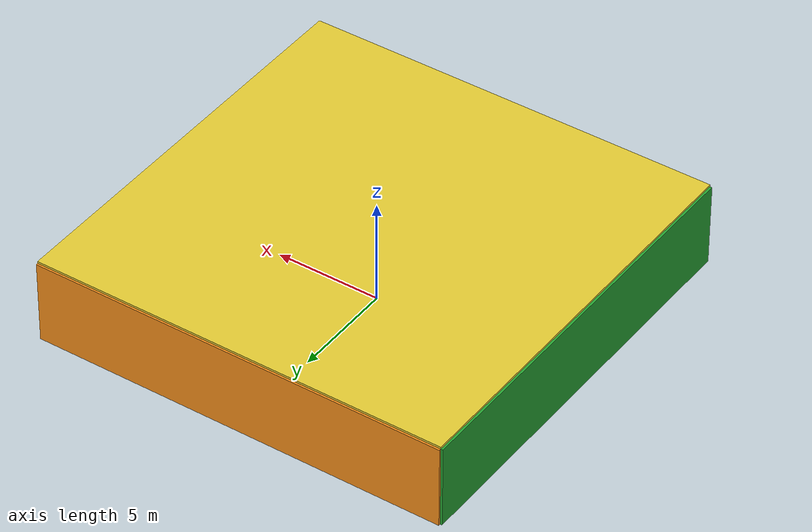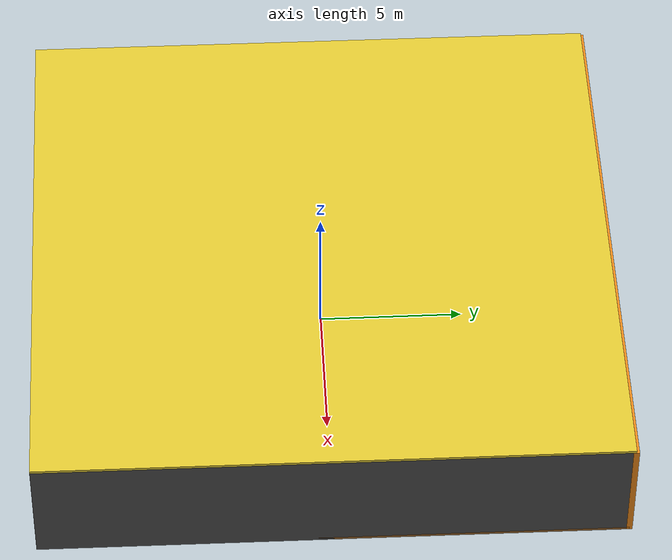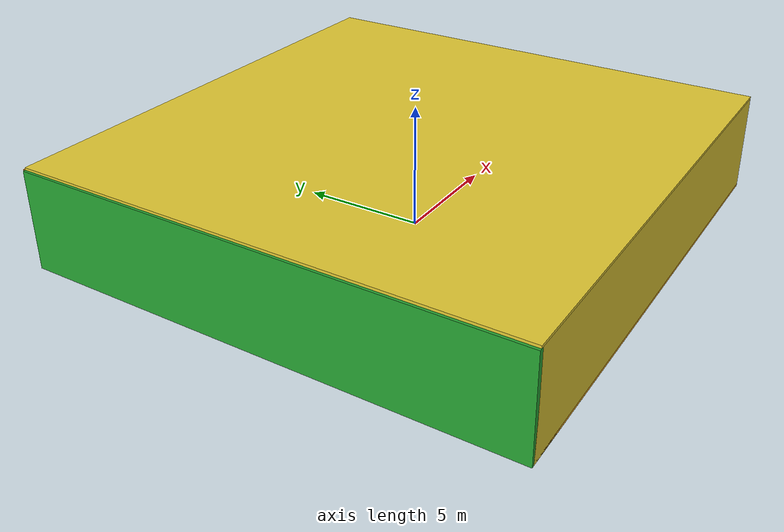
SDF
<sdf version="1.4">
 <world name="default">
  <physics type="ode">
   <max_step_size>0.001</max_step_size>
   <real_time_factor>1</real_time_factor>
   <real_time_update_rate>1000</real_time_update_rate>
   <gravity>0 0 -9.8</gravity>
  </physics>
  <scene><ambient>0.4 0.4 0.4 1</ambient><background>0.7 0.7 0.7 1</background><shadows>1</shadows></scene>
  <model name="Surrounding">
   <static>1</static>
   <link name="Ceiling">
    <collision name="Ceiling_Collision"><geometry><box><size>20 20 0.1</size></box></geometry></collision>
    <visual name="Ceiling_Visual">
     <geometry><box><size>20 20 0.1</size></box></geometry>
     <material>
      <script><uri>file://media/materials/scripts/gazebo.material</uri><name>Gazebo/ZincYellow</name></script>
     </material>
    </visual>
    <pose>0 0 4.05 0 0 0</pose>
   </link>
   <link name="Wall_South">
    <collision name="Wall_South_Collision">
     <geometry><box><size>20 0 4</size></box></geometry>
     <pose>0 0 2 0 -0 0</pose>
    </collision>
    <visual name="Wall_South_Visual">
     <pose>0 0 2 0 -0 0</pose>
     <geometry><box><size>20 0 4</size></box></geometry>
     <material>
      <script><uri>file://media/materials/scripts/gazebo.material</uri><name>Gazebo/ZincYellow</name></script>
     </material>
    </visual>
    <velocity_decay><linear>0</linear><angular>0</angular></velocity_decay>
    <pose>0 -10 0 0 -0 0</pose>
   </link>
   <link name="Wall_East">
    <collision name="Wall_21_Collision">
     <geometry><box><size>20 0 4</size></box></geometry>
     <pose>0 0 2 0 -0 0</pose>
    </collision>
    <visual name="Wall_21_Visual">
     <pose>0 0 2 0 -0 0</pose>
     <geometry><box><size>20 0 4</size></box></geometry>
     <material>
      <script><uri>file://media/materials/scripts/gazebo.material</uri><name>Gazebo/DarkGrey</name></script>
     </material>
    </visual>
    <velocity_decay><linear>0</linear><angular>0</angular></velocity_decay>
    <pose>10 0 0 0 -0 1.5708</pose>
   </link>
   <link name="Wall_North">
    <collision name="Wall_22_Collision">
     <geometry><box><size>20 0.2 4</size></box></geometry>
     <pose>0 0 2 0 -0 0</pose>
    </collision>
    <visual name="Wall_22_Visual">
     <pose>0 0 2 0 -0 0</pose>
     <geometry><box><size>20 0.2 4</size></box></geometry>
     <material>
      <script><uri>file://media/materials/scripts/gazebo.material</uri><name>Gazebo/Orange</name></script>
     </material>
    </visual>
    <velocity_decay><linear>0</linear><angular>0</angular></velocity_decay>
    <pose>0 10 0 0 -0 0</pose>
   </link>
   <link name="Wall_West">
    <collision name="Wall_23_Collision">
     <geometry><box><size>20 0.2 4</size></box></geometry>
     <pose>0 0 2 0 -0 0</pose>
    </collision>
    <visual name="Wall_23_Visual">
     <pose>0 0 2 0 -0 0</pose>
     <geometry><box><size>20 0.2 4</size></box></geometry>
     <material>
      <script><uri>file://media/materials/scripts/gazebo.material</uri><name>Gazebo/GreenGlow</name></script>
     </material>
    </visual>
    <velocity_decay><linear>0</linear><angular>0</angular></velocity_decay>
    <pose>-10 0 0 0 0 -1.5708</pose>
   </link>
   <link name="Ground_link">
    <collision name="collision">
     <pose>0 0 .05 0 -0 0</pose>
     <geometry><box><size>20 20 0.1</size></box></geometry>
    </collision>
    <visual name="visual">
     <pose>0 0 .05 0 -0 0</pose>
     <geometry><box><size>20 20 0.1</size></box></geometry>
     <material>
      <script>
       <uri>file://media/materials/scripts/gazebo.material</uri>
       <name>Gazebo/OrangeTransparent</name>
      </script>
     </material>
    </visual>
   </link>
   <static>1</static>
  </model>
  <spherical_coordinates>
   <surface_model>EARTH_WGS84</surface_model>
   <latitude_deg>0</latitude_deg>
   <longitude_deg>0</longitude_deg>
   <elevation>0</elevation>
   <heading_deg>0</heading_deg>
  </spherical_coordinates>
  <light name="lightball_0" type="diffuse">
   <diffuse>0.8 0.8 0.8 1</diffuse>
   <specular>0.2 0.2 0.2 1</specular>
   <attenuation>
    <range>100</range>
    <constant>0.7</constant>
    <linear>0.01</linear>
    <quadratic>0.001</quadratic>
   </attenuation>
   <direction>-0.5 0.1 -0.9</direction>
   <pose>5.24410748714 0.292180989482 2.56156318869 0 0 0</pose>
  </light>
  <light name="lightball_1" type="diffuse">
   <diffuse>0.8 0.8 0.8 1</diffuse>
   <specular>0.2 0.2 0.2 1</specular>
   <attenuation>
    <range>100</range>
    <constant>0.7</constant>
    <linear>0.01</linear>
    <quadratic>0.001</quadratic>
   </attenuation>
   <direction>-0.5 0.1 -0.9</direction>
   <pose>4.21238145068 8.8659340854 0.73266576788 0 0 0</pose>
  </light>
  <light name="lightball_2" type="diffuse">
   <diffuse>0.8 0.8 0.8 1</diffuse>
   <specular>0.2 0.2 0.2 1</specular>
   <attenuation>
    <range>100</range>
    <constant>0.7</constant>
    <linear>0.01</linear>
    <quadratic>0.001</quadratic>
   </attenuation>
   <direction>-0.5 0.1 -0.9</direction>
   <pose>-4.70834392055 1.761533475 1.19555045969 0 0 0</pose>
  </light>
  <light name="lightball_3" type="diffuse">
   <diffuse>0.8 0.8 0.8 1</diffuse>
   <specular>0.2 0.2 0.2 1</specular>
   <attenuation>
    <range>100</range>
    <constant>0.7</constant>
    <linear>0.01</linear>
    <quadratic>0.001</quadratic>
   </attenuation>
   <direction>-0.5 0.1 -0.9</direction>
   <pose>6.90084861671 -7.10885940108 0.973427821095 0 0 0</pose>
  </light>
  <light name="lightball_4" type="diffuse">
   <diffuse>0.8 0.8 0.8 1</diffuse>
   <specular>0.2 0.2 0.2 1</specular>
   <attenuation>
    <range>100</range>
    <constant>0.7</constant>
    <linear>0.01</linear>
    <quadratic>0.001</quadratic>
   </attenuation>
   <direction>-0.5 0.1 -0.9</direction>
   <pose>-2.52537970134 4.27331349567 3.44496572103 0 0 0</pose>
  </light>
  <include><uri>model://cabinet</uri><pose>-3.89636713113 -7.0051764288 0 0 0 1.3659940203</pose></include>
  <include>
   <uri>model://textured_shapes</uri>
   <pose>-3.74542366999 4.83051667027 0 0 0 3.06611172028</pose>
  </include>
  <include><uri>model://cabinet</uri><pose>-1.7949929046 6.81681487671 0 0 0 2.19111086377</pose></include>
  <include>
   <uri>model://textured_shapes</uri>
   <pose>2.18027861457 1.68096369718 0 0 0 2.18517506147</pose>
  </include>
  <include>
   <uri>model://robocup_3Dsim_goal</uri>
   <pose>1.57114894574 7.32944456785 0 0 0 2.92789347037</pose>
  </include>
  <include><uri>model://table</uri><pose>4.73668613793 5.19012737959 0 0 0 0.212279900593</pose></include>
  <include><uri>model://cabinet</uri><pose>5.13268081005 7.50364997873 0 0 0 1.32545735874</pose></include>
 </world>
</sdf>

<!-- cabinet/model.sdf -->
<sdf version="1.5">
  <model name="cabinet">
    <static>true</static>
    <link name="cabinet_bottom_plate">
      <inertial>
        <pose>0 0 -1 0 0 0</pose>
        <inertia>
          <ixx>2.050000</ixx>
          <ixy>0</ixy>
          <ixz>0</ixz>
          <iyy>2.050000</iyy>
          <iyz>0</iyz>
          <izz>2.050000</izz>
        </inertia>
        <mass>25.000000</mass>
      </inertial>
      <collision name="cabinet_bottom_plate_geom">
        <pose>0 0 0.010000 0 0 0</pose>
        <geometry>
          <box>
            <size>0.450000 0.450000 0.020000</size>
          </box>
        </geometry>
      </collision>
      <visual name="cabinet_bottom_plate_geom_visual">
        <pose>0 0 0.010000 0 0 0</pose>
        <geometry>
          <box>
            <size>0.450000 0.450000 0.020000</size>
          </box>
        </geometry>
        <material>
          <script>
            <uri>model://media/materials/scripts/gazebo.material</uri>
            <name>Gazebo/Wood</name>
          </script>
        </material>
      </visual>
      <collision name="cabinet_bottom_plate_geom_cabinet_back_plate">
        <pose>0.235000 0 0.510000 0 0 0</pose>
        <geometry>
          <box>
            <size>0.020000 0.450000 1.020000</size>
          </box>
        </geometry>
      </collision>
      <visual name="cabinet_bottom_plate_geom_cabinet_back_plate_visual">
        <pose>0.235000 0 0.510000 0 0 0</pose>
        <geometry>
          <box>
            <size>0.020000 0.450000 1.020000</size>
          </box>
        </geometry>
        <material>
          <script>
            <uri>model://media/materials/scripts/gazebo.material</uri>
            <name>Gazebo/Wood</name>
          </script>
        </material>
      </visual>
      <collision name="cabinet_bottom_plate_geom_cabinet_left_plate">
        <pose>0 0.235000 0.510000 0 0 0</pose>
        <geometry>
          <box>
            <size>0.450000 0.020000 1.020000</size>
          </box>
        </geometry>
      </collision>
      <visual name="cabinet_bottom_plate_geom_cabinet_left_plate_visual">
        <pose>0 0.235000 0.510000 0 0 0</pose>
        <geometry>
          <box>
            <size>0.450000 0.020000 1.020000</size>
          </box>
        </geometry>
        <material>
          <script>
            <uri>model://media/materials/scripts/gazebo.material</uri>
            <name>Gazebo/Wood</name>
          </script>
        </material>
      </visual>
      <collision name="cabinet_bottom_plate_geom_cabinet_middle_plate">
        <pose>0 0 0.510000 0 0 0</pose>
        <geometry>
          <box>
            <size>0.450000 0.450000 0.020000</size>
          </box>
        </geometry>
      </collision>
      <visual name="cabinet_bottom_plate_geom_cabinet_middle_plate_visual">
        <pose>0 0 0.510000 0 0 0</pose>
        <geometry>
          <box>
            <size>0.450000 0.450000 0.020000</size>
          </box>
        </geometry>
        <material>
          <script>
            <uri>model://media/materials/scripts/gazebo.material</uri>
            <name>Gazebo/Wood</name>
          </script>
        </material>
      </visual>
      <collision name="cabinet_bottom_plate_geom_cabinet_right_plate">
        <pose>0 -0.235000 0.510000 0 0 0</pose>
        <geometry>
          <box>
            <size>0.450000 0.020000 1.020000</size>
          </box>
        </geometry>
      </collision>
      <visual name="cabinet_bottom_plate_geom_cabinet_right_plate_visual">
        <pose>0 -0.235000 0.510000 0 0 0</pose>
        <geometry>
          <box>
            <size>0.450000 0.020000 1.020000</size>
          </box>
        </geometry>
        <material>
          <script>
            <uri>model://media/materials/scripts/gazebo.material</uri>
            <name>Gazebo/Wood</name>
          </script>
        </material>
      </visual>
      <collision name="cabinet_bottom_plate_geom_cabinet_top_plate">
        <pose>0 0 1.010000 0 0 0</pose>
        <geometry>
          <box>
            <size>0.450000 0.450000 0.020000</size>
          </box>
        </geometry>
      </collision>
      <visual name="cabinet_bottom_plate_geom_cabinet_top_plate_visual">
        <pose>0 0 1.010000 0 0 0</pose>
        <geometry>
          <box>
            <size>0.450000 0.450000 0.020000</size>
          </box>
        </geometry>
        <material>
          <script>
            <uri>model://media/materials/scripts/gazebo.material</uri>
            <name>Gazebo/Wood</name>
          </script>
        </material>
      </visual>
    </link>
  </model>
</sdf>

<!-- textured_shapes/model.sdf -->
<sdf version="1.6">
  <model name="textured_shapes">
    <pose>0 0 0.5 0 0 0</pose>
    <link name="box">
      <pose>0 -1.5 0 0 0 0</pose>
      <collision name="collision">
        <geometry>
          <box>
            <size>1 1 1</size>
          </box>
        </geometry>
      </collision>
      <visual name="visual">
        <geometry>
          <box>
            <size>1 1 1</size>
          </box>
        </geometry>
        <material>
          <script>
            <uri>model://../model_source/models/textured_shapes/materials/scripts</uri>
            <uri>model://../model_source/models/textured_shapes/materials/textures</uri>
            <name>TexturedShape/Squares</name>
          </script>
        </material>
      </visual>
    </link>
    <link name="sphere">
      <collision name="collision">
        <geometry>
          <sphere>
            <radius>0.5</radius>
          </sphere>
        </geometry>
      </collision>
      <visual name="visual">
        <geometry>
          <sphere>
            <radius>0.5</radius>
          </sphere>
        </geometry>
        <material>
          <script>
            <uri>model://../model_source/models/textured_shapes/materials/scripts</uri>
            <uri>model://../model_source/models/textured_shapes/materials/textures</uri>
            <name>TexturedShape/Squares</name>
          </script>
        </material>
      </visual>
    </link>
    <link name="cylinder">
      <pose>0 1.5 0 0 0 0</pose>
      <collision name="collision">
        <geometry>
          <cylinder>
            <radius>0.5</radius>
            <length>1</length>
          </cylinder>
        </geometry>
      </collision>
      <visual name="visual">
        <geometry>
          <cylinder>
            <radius>0.5</radius>
            <length>1</length>
          </cylinder>
        </geometry>
        <material>
          <script>
            <uri>model://../model_source/models/textured_shapes/materials/scripts</uri>
            <uri>model://../model_source/models/textured_shapes/materials/textures</uri>
            <name>TexturedShape/Squares</name>
          </script>
        </material>
      </visual>
    </link>
  </model>
</sdf>

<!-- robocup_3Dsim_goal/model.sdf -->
<sdf version="1.5">
  <model name="robocup_3d_goal">
    <static>true</static>
    <link name="left_post">
      <pose>0 1.05 0.45 0 0 0</pose>
      <collision name="collision">
        <geometry>
          <cylinder>
            <radius>0.05</radius>
            <length>0.9</length>
          </cylinder>
        </geometry>
      </collision>
      <visual name="visual">
        <geometry>
          <cylinder>
            <radius>0.05</radius>
            <length>0.9</length>
          </cylinder>
        </geometry>
        <material>
          <script>
            <uri>file://media/materials/scripts/gazebo.material</uri>
            <name>Gazebo/ZincYellow</name>
          </script>
        </material>
      </visual>
    </link>
    <link name="left_support_horiz_lower">
      <pose>0.30 1.05 0.01 0 0 0</pose>
      <collision name="collision">
        <geometry>
          <box>
            <size>0.50 0.02 0.02</size>
          </box>
        </geometry>
      </collision>
      <visual name="visual">
        <geometry>
          <box>
            <size>0.50 0.02 0.02</size>
          </box>
        </geometry>
        <material>
          <script>
            <uri>file://media/materials/scripts/gazebo.material</uri>
            <name>Gazebo/White</name>
          </script>
        </material>
      </visual>
    </link>
    <link name="left_support_horiz_upper">
      <pose>0.30 1.05 0.79 0 0 0</pose>
      <collision name="collision">
        <geometry>
          <box>
            <size>0.50 0.02 0.02</size>
          </box>
        </geometry>
      </collision>
      <visual name="visual">
        <geometry>
          <box>
            <size>0.50 0.02 0.02</size>
          </box>
        </geometry>
        <material>
          <script>
            <uri>file://media/materials/scripts/gazebo.material</uri>
            <name>Gazebo/White</name>
          </script>
        </material>
      </visual>
    </link>
    <link name="left_support_vertical">
      <pose>0.56 1.05 0.4 0 1.5708 0</pose>
      <collision name="collision">
        <geometry>
          <box>
            <size>0.80 0.02 0.02</size>
          </box>
        </geometry>
      </collision>
      <visual name="visual">
        <geometry>
          <box>
            <size>0.80 0.02 0.02</size>
          </box>
        </geometry>
        <material>
          <script>
            <uri>file://media/materials/scripts/gazebo.material</uri>
            <name>Gazebo/White</name>
          </script>
        </material>
      </visual>
    </link>
    <link name="right_support_horiz_lower">
      <pose>0.30 -1.05 0.01 0 0 0</pose>
      <collision name="collision">
        <geometry>
          <box>
            <size>0.50 0.02 0.02</size>
          </box>
        </geometry>
      </collision>
      <visual name="visual">
        <geometry>
          <box>
            <size>0.50 0.02 0.02</size>
          </box>
        </geometry>
        <material>
          <script>
            <uri>file://media/materials/scripts/gazebo.material</uri>
            <name>Gazebo/White</name>
          </script>
        </material>
      </visual>
    </link>
    <link name="right_support_horiz_upper">
      <pose>0.30 -1.05 0.79 0 0 0</pose>
      <collision name="collision">
        <geometry>
          <box>
            <size>0.50 0.02 0.02</size>
          </box>
        </geometry>
      </collision>
      <visual name="visual">
        <geometry>
          <box>
            <size>0.50 0.02 0.02</size>
          </box>
        </geometry>
        <material>
          <script>
            <uri>file://media/materials/scripts/gazebo.material</uri>
            <name>Gazebo/White</name>
          </script>
        </material>
      </visual>
    </link>
    <link name="right_support_vertical">
      <pose>0.56 -1.05 0.4 0 1.5708 0</pose>
      <collision name="collision">
        <geometry>
          <box>
            <size>0.80 0.02 0.02</size>
          </box>
        </geometry>
      </collision>
      <visual name="visual">
        <geometry>
          <box>
            <size>0.80 0.02 0.02</size>
          </box>
        </geometry>
        <material>
          <script>
            <uri>file://media/materials/scripts/gazebo.material</uri>
            <name>Gazebo/White</name>
          </script>
        </material>
      </visual>
    </link>
    <link name="center_support_horiz_lower">
      <pose>0.56 0 0.01 0 1.5708 0</pose>
      <collision name="collision">
        <geometry>
          <box>
            <size>0.02 2.08 0.02</size>
          </box>
        </geometry>
      </collision>
      <visual name="visual">
        <geometry>
          <box>
            <size>0.02 2.08 0.02</size>
          </box>
        </geometry>
        <material>
          <script>
            <uri>file://media/materials/scripts/gazebo.material</uri>
            <name>Gazebo/White</name>
          </script>
        </material>
      </visual>
    </link>
    <link name="center_support_horiz_upper">
      <pose>0.56 0 0.79 0 1.5708 0</pose>
      <collision name="collision">
        <geometry>
          <box>
            <size>0.02 2.08 0.02</size>
          </box>
        </geometry>
      </collision>
      <visual name="visual">
        <geometry>
          <box>
            <size>0.02 2.08 0.02</size>
          </box>
        </geometry>
        <material>
          <script>
            <uri>file://media/materials/scripts/gazebo.material</uri>
            <name>Gazebo/White</name>
          </script>
        </material>
      </visual>
    </link>
    <link name="right_post">
      <pose>0 -1.05 0.45 0 0 0</pose>
      <collision name="collision">
        <geometry>
          <cylinder>
            <radius>0.05</radius>
            <length>0.9</length>
          </cylinder>
        </geometry>
      </collision>
      <visual name="visual">
        <geometry>
          <cylinder>
            <radius>0.05</radius>
            <length>0.9</length>
          </cylinder>
        </geometry>
        <material>
          <script>
            <uri>file://media/materials/scripts/gazebo.material</uri>
            <name>Gazebo/ZincYellow</name>
          </script>
        </material>
      </visual>
    </link>
    <link name="crossbar">
      <pose>0 0 0.85 1.57 1.57 0</pose>
      <collision name="collision">
        <geometry>
          <cylinder>
            <radius>0.05</radius>
            <length>2.0</length>
          </cylinder>
        </geometry>
      </collision>
      <visual name="visual">
        <geometry>
          <cylinder>
            <radius>0.05</radius>
            <length>2.0</length>
          </cylinder>
        </geometry>
        <material>
          <script>
            <uri>file://media/materials/scripts/gazebo.material</uri>
            <name>Gazebo/ZincYellow</name>
          </script>
        </material>
      </visual>
    </link>
    <link name="center_net">
      <pose>0.56 0 0.40 0 0 0</pose>
      <collision name="collision">
        <geometry>
          <box>
            <size>0.01 2.1 0.80</size>
          </box>
        </geometry>
      </collision>
      <visual name="visual">
        <geometry>
          <box>
            <size>0.01 2.1 0.80</size>
          </box>
        </geometry>
        <material>
          <script>
            <uri>model://../model_source/models/robocup09_spl_field/materials/scripts/</uri>
            <uri>model://../model_source/models/robocup09_spl_field/materials/textures/</uri>
            <name>RoboCup/Net</name>
          </script>
        </material>
      </visual>
    </link>
    <link name="left_net">
      <pose>0.30 1.05 0.40 0 0 0</pose>
      <collision name="collision">
        <geometry>
          <box>
            <size>0.50 0.01 0.76</size>
          </box>
        </geometry>
      </collision>
      <visual name="visual">
        <geometry>
          <box>
            <size>0.50 0.01 0.76</size>
          </box>
        </geometry>
        <material>
          <script>
            <uri>model://../model_source/models/robocup09_spl_field/materials/scripts/</uri>
            <uri>model://../model_source/models/robocup09_spl_field/materials/textures/</uri>
            <name>RoboCup/Net</name>
          </script>
        </material>
      </visual>
    </link>
    <link name="right_net">
      <pose>0.30 -1.05 0.40 0 0 0</pose>
      <collision name="collision">
        <geometry>
          <box>
            <size>0.50 0.01 0.76</size>
          </box>
        </geometry>
      </collision>
      <visual name="visual">
        <geometry>
          <box>
            <size>0.50 0.01 0.76</size>
          </box>
        </geometry>
        <material>
          <script>
            <uri>model://../model_source/models/robocup09_spl_field/materials/scripts/</uri>
            <uri>model://../model_source/models/robocup09_spl_field/materials/textures/</uri>
            <name>RoboCup/Net</name>
          </script>
        </material>
      </visual>
    </link>
  </model>
</sdf>

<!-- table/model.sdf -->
<sdf version="1.5">
  <model name="table">
    <static>true</static>
    <link name="link">
      <collision name="surface">
        <pose>0 0 1.0 0 0 0</pose>
        <geometry>
          <box>
            <size>1.5 0.8 0.03</size>
          </box>
        </geometry>
        <surface>
          <friction>
            <ode>
              <mu>0.6</mu>
              <mu2>0.6</mu2>
            </ode>
          </friction>
        </surface>
      </collision>
      <visual name="visual1">
        <pose>0 0 1.0 0 0 0</pose>
        <geometry>
          <box>
            <size>1.5 0.8 0.03</size>
          </box>
        </geometry>
        <material>
          <script>
            <uri>model://media/materials/scripts/gazebo.material</uri>
            <name>Gazebo/Wood</name>
          </script>
        </material>
      </visual>
      <collision name="front_left_leg">
        <pose>0.68 0.38 0.5 0 0 0</pose>
        <geometry>
          <cylinder>
            <radius>0.02</radius>
            <length>1.0</length>
          </cylinder>
        </geometry>
      </collision>
      <visual name="front_left_leg">
        <pose>0.68 0.38 0.5 0 0 0</pose>
        <geometry>
          <cylinder>
            <radius>0.02</radius>
            <length>1.0</length>
          </cylinder>
        </geometry>
        <material>
          <script>
            <uri>model://media/materials/scripts/gazebo.material</uri>
            <name>Gazebo/Grey</name>
          </script>
        </material>
      </visual>
      <collision name="front_right_leg">
        <pose>0.68 -0.38 0.5 0 0 0</pose>
        <geometry>
          <cylinder>
            <radius>0.02</radius>
            <length>1.0</length>
          </cylinder>
        </geometry>
      </collision>
      <visual name="front_right_leg">
        <pose>0.68 -0.38 0.5 0 0 0</pose>
        <geometry>
          <cylinder>
            <radius>0.02</radius>
            <length>1.0</length>
          </cylinder>
        </geometry>
        <material>
          <script>
            <uri>model://media/materials/scripts/gazebo.material</uri>
            <name>Gazebo/Grey</name>
          </script>
        </material>
      </visual>
      <collision name="back_right_leg">
        <pose>-0.68 -0.38 0.5 0 0 0</pose>
        <geometry>
          <cylinder>
            <radius>0.02</radius>
            <length>1.0</length>
          </cylinder>
        </geometry>
      </collision>
      <visual name="back_right_leg">
        <pose>-0.68 -0.38 0.5 0 0 0</pose>
        <geometry>
          <cylinder>
            <radius>0.02</radius>
            <length>1.0</length>
          </cylinder>
        </geometry>
        <material>
          <script>
            <uri>model://media/materials/scripts/gazebo.material</uri>
            <name>Gazebo/Grey</name>
          </script>
        </material>
      </visual>
      <collision name="back_left_leg">
        <pose>-0.68 0.38 0.5 0 0 0</pose>
        <geometry>
          <cylinder>
            <radius>0.02</radius>
            <length>1.0</length>
          </cylinder>
        </geometry>
      </collision>
      <visual name="back_left_leg">
        <pose>-0.68 0.38 0.5 0 0 0</pose>
        <geometry>
          <cylinder>
            <radius>0.02</radius>
            <length>1.0</length>
          </cylinder>
        </geometry>
        <material>
          <script>
            <uri>model://media/materials/scripts/gazebo.material</uri>
            <name>Gazebo/Grey</name>
          </script>
        </material>
      </visual>
    </link>
  </model>
</sdf>
